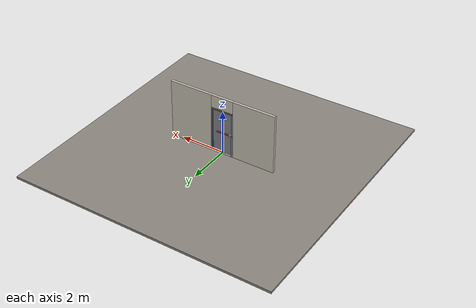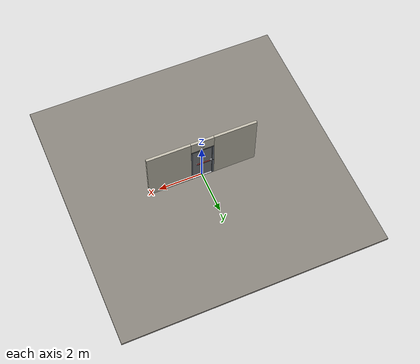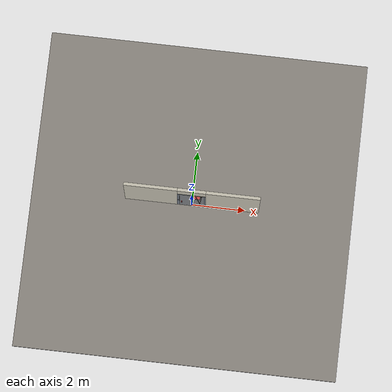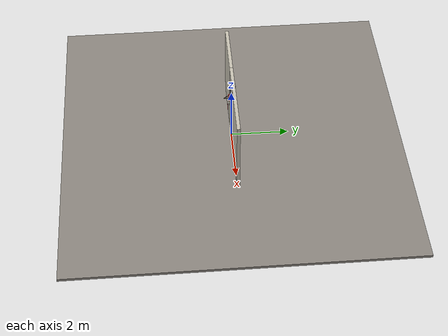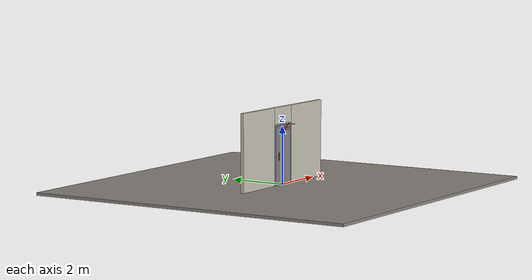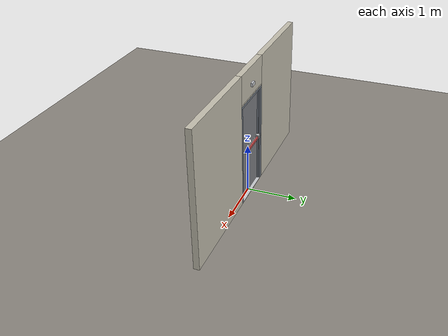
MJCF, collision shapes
<?xml version="1.0" ?>
<mujoco model="db0171_swing_single_full">
  <compiler angle="radian" meshdir="../../hardware" texturedir="../../textures" autolimits="true" inertiafromgeom="false"/>
  <option timestep="0.002" integrator="implicitfast" cone="elliptic" impratio="10" noslip_iterations="3">
    <flag multiccd="enable"/>
  </option>
  <size memory="16M"/>
  <default>
    <geom condim="4" solref="0.005 1" solimp="0.95 0.99 0.001"/>
    <joint solreflimit="0.005 1" solimplimit="0.95 0.99 0.001"/>
    <tendon solreflimit="0.005 1"/>
    <equality solref="0.002 1"/>
  </default>
  <visual>
    <headlight ambient="0.4 0.4 0.4" diffuse="0.7 0.7 0.7" specular="0.2 0.2 0.2"/>
    <quality shadowsize="4096"/>
    <map znear="0.01" zfar="60"/>
  </visual>
  <asset>
    <mesh name="closer_body_fdc4667657" file="closer_body_fdc4667657.obj"/>
    <mesh name="exit_sign_a6449bfa2c" file="exit_sign_a6449bfa2c.obj"/>
    <mesh name="hinge_e22b26c0c1" file="hinge_e22b26c0c1.obj"/>
    <mesh name="hinge_jamb_e1d088f8dc" file="hinge_jamb_e1d088f8dc.obj"/>
    <mesh name="pull_f8d79d6331" file="pull_f8d79d6331.obj"/>
    <mesh name="touchbar_pad_2729a067b4" file="touchbar_pad_2729a067b4.obj"/>
    <material name="mat_floor" rgba="0.55 0.53 0.5 1" specular="0.2" shininess="0.15" reflectance="0"/>
    <material name="mat_wall" rgba="0.78 0.76 0.7 1" specular="0.2" shininess="0.1" reflectance="0"/>
    <material name="mat_leaf" rgba="0.5 0.51 0.53 1" specular="0.2" shininess="0.51" reflectance="0"/>
    <material name="mat_leaf_louver" rgba="0.425 0.433 0.451 1" specular="0.2" shininess="0.4" reflectance="0"/>
    <material name="mat_hinge" rgba="0.65 0.66 0.68 1" specular="0.74" shininess="0.5" reflectance="0.36"/>
    <material name="mat_op_stainless" rgba="0.75 0.76 0.77 1" specular="0.8" shininess="0.65" reflectance="0.4"/>
    <material name="mat_bolt" rgba="0.75 0.76 0.77 1" specular="0.8" shininess="0.65" reflectance="0.4"/>
    <material name="mat_frame" rgba="0.45 0.48 0.52 1" specular="0.32" shininess="0.6" reflectance="0.08"/>
    <material name="mat_threshold" rgba="0.8 0.81 0.83 1" specular="0.8" shininess="0.6" reflectance="0.4"/>
    <material name="mat_closer" rgba="0.22 0.17 0.13 1" specular="0.8" shininess="0.6" reflectance="0.4"/>
    <material name="mat_exit_sign" rgba="0.85 0.1 0.1 1" specular="0.2" shininess="0.6" reflectance="0"/>
    <material name="mat_sign_bracket" rgba="0.8 0.81 0.83 1" specular="0.8" shininess="0.6" reflectance="0.4"/>
    <texture name="skybox" type="skybox" builtin="gradient" rgb1="0.6 0.7 0.85" rgb2="0.9 0.92 0.95" width="256" height="256"/>
  </asset>
  <worldbody>
    <light name="sun" pos="1.5 -2.5 4" dir="-0.3 0.5 -0.8" directional="true" diffuse="0.8 0.8 0.8" specular="0.3 0.3 0.3" castshadow="true"/>
    <light name="fill" pos="-1.5 2.5 3" dir="0.3 -0.5 -0.7" directional="true" diffuse="0.35 0.35 0.4" castshadow="false"/>
    <camera name="robot_view" pos="0 -2.513687 1.734312" xyaxes="1 0 0 0 0.26963 0.962964" fovy="52"/>
    <camera name="far_view" pos="0 2.570688 1.734312" xyaxes="-1 0 0 0 -0.26963 0.962964" fovy="52"/>
    <camera name="iso" pos="-1.932062 -2.106937 2.141063" xyaxes="0.741536 -0.670913 0 0.242917 0.268487 0.932151" fovy="46"/>
    <camera name="detail_handle" pos="-0.1865 -0.897 1.296" xyaxes="0.97561 0.219512 0 -0.070934 0.315262 0.94635" fovy="38"/>
    <geom name="floor" type="box" size="6 6 0.05" pos="0 0 -0.05" material="mat_floor" group="0" contype="1" conaffinity="1" friction="0.8 0.005 0.0001" density="2400"/>
    <geom name="wall_left" type="box" size="0.97975 0.0575 1.35" pos="-1.52025 0.0285 1.35" material="mat_wall" group="0" contype="1" conaffinity="1" friction="0.6 0.005 0.0001" density="800"/>
    <geom name="wall_right" type="box" size="0.99475 0.0575 1.35" pos="1.50525 0.0285 1.35" material="mat_wall" group="0" contype="1" conaffinity="1" friction="0.6 0.005 0.0001" density="800"/>
    <geom name="wall_header" type="box" size="0.5255 0.0575 0.2875" pos="-0.015 0.0285 2.4125" material="mat_wall" group="0" contype="1" conaffinity="1" friction="0.6 0.005 0.0001" density="800"/>
    <geom name="hinge_0_jamb" type="mesh" mesh="hinge_jamb_e1d088f8dc" pos="0.4575 -0.029 0.267" quat="0 0 1 0" material="mat_hinge" group="1" contype="0" conaffinity="0" density="7850"/>
    <geom name="hinge_1_jamb" type="mesh" mesh="hinge_jamb_e1d088f8dc" pos="0.4575 -0.029 1.029" quat="0 0 1 0" material="mat_hinge" group="1" contype="0" conaffinity="0" density="7850"/>
    <geom name="hinge_2_jamb" type="mesh" mesh="hinge_jamb_e1d088f8dc" pos="0.4575 -0.029 1.861" quat="0 0 1 0" material="mat_hinge" group="1" contype="0" conaffinity="0" density="7850"/>
    <geom name="jamb_hinge" type="box" size="0.025 0.0575 1.0225" pos="0.4855 0.0285 1.0225" material="mat_frame" group="0" contype="1" conaffinity="1" friction="0.6 0.005 0.0001" density="300"/>
    <geom name="strike_1016_wall_n" type="box" size="0.04 0.0155 0.02" pos="-0.5005 0.0705 1.016" material="mat_frame" group="0" contype="1" conaffinity="1" friction="0.6 0.005 0.0001" density="300"/>
    <geom name="strike_1016_wall_p" type="box" size="0.04 0.008 0.02" pos="-0.5005 0.025 1.016" material="mat_frame" group="0" contype="1" conaffinity="1" friction="0.6 0.005 0.0001" density="300"/>
    <geom name="strike_1016_ramp" type="box" size="0.04 0.034482 0.02" pos="-0.508781 -0.0044 1.016" quat="0.989198 0 0 -0.146587" material="mat_frame" group="0" contype="1" conaffinity="1" friction="0.12 0.005 0.0001" density="300"/>
    <geom name="strike_1016_back" type="box" size="0.0285 0.011 0.02" pos="-0.512 0.044 1.016" material="mat_frame" group="0" contype="1" conaffinity="1" friction="0.6 0.005 0.0001" density="300"/>
    <geom name="jamb_strike_0" type="box" size="0.04 0.0575 0.498" pos="-0.5005 0.0285 0.498" material="mat_frame" group="0" contype="1" conaffinity="1" friction="0.6 0.005 0.0001" density="300"/>
    <geom name="jamb_strike_1" type="box" size="0.04 0.0575 0.5045" pos="-0.5005 0.0285 1.5405" material="mat_frame" group="0" contype="1" conaffinity="1" friction="0.6 0.005 0.0001" density="300"/>
    <geom name="jamb_head" type="box" size="0.5255 0.0575 0.025" pos="-0.015 0.0285 2.07" material="mat_frame" group="0" contype="1" conaffinity="1" friction="0.6 0.005 0.0001" density="300"/>
    <geom name="head_stud" type="box" size="0.5255 0.0575 0.015" pos="-0.015 0.0285 2.11" material="mat_wall" group="0" contype="1" conaffinity="1" friction="0.6 0.005 0.0001" density="500"/>
    <geom name="stop_hinge" type="box" size="0.0055 0.016 1.0225" pos="0.455 0.0385 1.0225" material="mat_frame" group="0" contype="1" conaffinity="1" friction="0.6 0.005 0.0001" density="300"/>
    <geom name="stop_strike" type="box" size="0.0055 0.016 0.48425" pos="-0.455 0.0385 0.48425" material="mat_frame" group="0" contype="1" conaffinity="1" friction="0.6 0.005 0.0001" density="300"/>
    <geom name="stop_strike_1" type="box" size="0.0055 0.016 0.49075" pos="-0.455 0.0385 1.55425" material="mat_frame" group="0" contype="1" conaffinity="1" friction="0.6 0.005 0.0001" density="300"/>
    <geom name="stop_head" type="box" size="0.4605 0.016 0.0055" pos="0 0.0385 2.0395" material="mat_frame" group="0" contype="1" conaffinity="1" friction="0.6 0.005 0.0001" density="300"/>
    <geom name="threshold" type="box" size="0.5105 0.0575 0.0065" pos="0 0.0285 0.0065" material="mat_threshold" group="0" contype="1" conaffinity="1" friction="0.5 0.005 0.0001" density="2700"/>
    <geom name="closer_bracket" type="box" size="0.03 0.012 0.014" pos="0.3605 -0.041 2.075" material="mat_closer" group="1" contype="0" conaffinity="0" density="2700"/>
    <geom name="exit_sign" type="mesh" mesh="exit_sign_a6449bfa2c" pos="0 0.15 2.345" material="mat_exit_sign" group="2" contype="0" conaffinity="0" density="500"/>
    <geom name="exit_sign_bracket" type="box" size="0.05775 0.02 0.035" pos="0 0.1055 2.345" material="mat_sign_bracket" group="2" contype="0" conaffinity="0" density="7850"/>
    <site name="approach_point" pos="0 -1.5 0" quat="1 0 0 0" size="0.05" rgba="0.2 0.9 0.2 0.5" group="4"/>
    <site name="goal_point" pos="0 1.5 0" quat="1 0 0 0" size="0.05" rgba="0.2 0.9 0.2 0.5" group="4"/>
    <site name="door_plane_center" pos="0 0 1.0225" quat="1 0 0 0" size="0.02" rgba="0.2 0.9 0.2 0.5" group="4"/>
    <body name="leaf" pos="0.4605 0 0">
      <inertial pos="-0.432707 -0.016718 1.240478" mass="49.686444" quat="0.523339 -0.518651 -0.465616 -0.490223" diaginertia="3.128999194 19.707523063 22.727664229"/>
      <joint name="leaf_hinge" type="hinge" axis="0 0 1" pos="-0.003 -0.029 0" limited="true" range="0 1.570796" damping="12.25611" frictionloss="0.300785" stiffness="12.598705" springref="-1.600164" armature="0.02"/>
      <geom name="leaf_slab" type="box" size="0.457 0.022 1.012" pos="-0.46 0 1.029" material="mat_leaf" group="0" contype="1" conaffinity="1" friction="0.4 0.005 0.0001" density="1"/>
      <geom name="leaf_louver_0" type="box" size="0.2285 0.002 0.02625" pos="-0.46 0 0.292" quat="0.953717 0.300706 0 0" material="mat_leaf_louver" group="1" contype="0" conaffinity="0" density="1"/>
      <geom name="leaf_louver_1" type="box" size="0.2285 0.002 0.02625" pos="-0.46 0 0.342" quat="0.953717 0.300706 0 0" material="mat_leaf_louver" group="1" contype="0" conaffinity="0" density="1"/>
      <geom name="leaf_louver_2" type="box" size="0.2285 0.002 0.02625" pos="-0.46 0 0.392" quat="0.953717 0.300706 0 0" material="mat_leaf_louver" group="1" contype="0" conaffinity="0" density="1"/>
      <geom name="leaf_louver_3" type="box" size="0.2285 0.002 0.02625" pos="-0.46 0 0.442" quat="0.953717 0.300706 0 0" material="mat_leaf_louver" group="1" contype="0" conaffinity="0" density="1"/>
      <geom name="leaf_louver_4" type="box" size="0.2285 0.002 0.02625" pos="-0.46 0 0.492" quat="0.953717 0.300706 0 0" material="mat_leaf_louver" group="1" contype="0" conaffinity="0" density="1"/>
      <geom name="leaf_louver_5" type="box" size="0.2285 0.002 0.02625" pos="-0.46 0 0.542" quat="0.953717 0.300706 0 0" material="mat_leaf_louver" group="1" contype="0" conaffinity="0" density="1"/>
      <geom name="leaf_louver_6" type="box" size="0.2285 0.002 0.02625" pos="-0.46 0 0.592" quat="0.953717 0.300706 0 0" material="mat_leaf_louver" group="1" contype="0" conaffinity="0" density="1"/>
      <geom name="leaf_louver_7" type="box" size="0.2285 0.002 0.02625" pos="-0.46 0 0.642" quat="0.953717 0.300706 0 0" material="mat_leaf_louver" group="1" contype="0" conaffinity="0" density="1"/>
      <geom name="leaf_louver_8" type="box" size="0.2285 0.002 0.02625" pos="-0.46 0 0.692" quat="0.953717 0.300706 0 0" material="mat_leaf_louver" group="1" contype="0" conaffinity="0" density="1"/>
      <geom name="hinge_0" type="mesh" mesh="hinge_e22b26c0c1" pos="-0.003 -0.029 0.267" quat="0 0 1 0" material="mat_hinge" group="1" contype="0" conaffinity="0" density="7850"/>
      <geom name="hinge_1" type="mesh" mesh="hinge_e22b26c0c1" pos="-0.003 -0.029 1.029" quat="0 0 1 0" material="mat_hinge" group="1" contype="0" conaffinity="0" density="7850"/>
      <geom name="hinge_2" type="mesh" mesh="hinge_e22b26c0c1" pos="-0.003 -0.029 1.861" quat="0 0 1 0" material="mat_hinge" group="1" contype="0" conaffinity="0" density="7850"/>
      <geom name="leaf_exit_device_rail" type="box" size="0.31705 0.006 0.025" pos="-0.51995 0.028 1.016" material="mat_op_stainless" group="0" contype="1" conaffinity="1" friction="0.6 0.005 0.0001" density="3000"/>
      <geom name="leaf_exit_device_rail_end_n" type="box" size="0.01 0.0325 0.025" pos="-0.827 0.0545 1.016" material="mat_op_stainless" group="0" contype="1" conaffinity="1" friction="0.6 0.005 0.0001" density="3000"/>
      <geom name="leaf_exit_device_rail_end_p" type="box" size="0.01 0.0325 0.025" pos="-0.2129 0.0545 1.016" material="mat_op_stainless" group="0" contype="1" conaffinity="1" friction="0.6 0.005 0.0001" density="3000"/>
      <geom name="leaf_exit_device_case" type="box" size="0.034 0.034125 0.0375" pos="-0.871 0.056125 1.016" material="mat_op_stainless" group="0" contype="1" conaffinity="1" friction="0.6 0.005 0.0001" density="3000"/>
      <geom name="leaf_far_pull_n" type="mesh" mesh="pull_f8d79d6331" pos="-0.827 -0.022 1.016" quat="0 0 -0.707107 0.707107" material="mat_op_stainless" group="1" contype="0" conaffinity="0" density="3000"/>
      <geom name="leaf_far_pull_col_n" type="capsule" size="0.0125 0.13" pos="-0.827 -0.097 1.016" material="mat_op_stainless" group="3" contype="1" conaffinity="1" rgba="0.8 0.3 0.3 0.25" friction="0.7 0.01 0.0001" density="3000"/>
      <geom name="closer_body" type="mesh" mesh="closer_body_fdc4667657" pos="-0.3 -0.022 1.944" quat="0 0 -0.707107 0.707107" material="mat_closer" group="1" contype="0" conaffinity="0" density="2000"/>
      <geom name="closer_body_col" type="box" size="0.145 0.05 0.035" pos="-0.3 -0.072 1.944" material="mat_closer" group="3" contype="1" conaffinity="1" rgba="0.8 0.3 0.3 0.25" friction="0.6 0.005 0.0001" density="2000"/>
      <geom name="closer_pinion_shaft" type="cylinder" size="0.008 0.0655" pos="-0.3 -0.072 2.0095" material="mat_closer" group="1" contype="0" conaffinity="0" density="2700"/>
      <site name="leaf_far_pull_grip_n" pos="-0.827 -0.097 1.016" quat="1 0 0 0" size="0.012" rgba="0.2 0.9 0.2 0.5" group="4"/>
      <site name="leaf_edge_mid" pos="-0.917 0 1.012" quat="1 0 0 0" size="0.02" rgba="0.2 0.9 0.2 0.5" group="4"/>
      <body name="leaf_exit_device" pos="-0.51995 0.022 1.016">
        <inertial pos="0 0.05 0" mass="4.76361" quat="0 0 0.707107 0.707107" diaginertia="0.00116113 0.137653089 0.138099678"/>
        <joint name="leaf_exit_device_slide" type="slide" axis="0 -1 0" limited="true" range="0 0.016" damping="153.575154" frictionloss="0.5" stiffness="1200" springref="-0.015" armature="0.15"/>
        <geom name="leaf_exit_device_pad" type="mesh" mesh="touchbar_pad_2729a067b4" pos="0 0 0" quat="0 0 0.707107 0.707107" material="mat_op_stainless" group="1" contype="0" conaffinity="0" density="3000"/>
        <geom name="leaf_exit_device_pad_col" type="box" size="0.29405 0.015 0.0225" pos="0 0.05 0" material="mat_op_stainless" group="3" contype="1" conaffinity="1" rgba="0.8 0.3 0.3 0.25" friction="0.8 0.01 0.0001" density="3000"/>
        <site name="leaf_exit_device_push" pos="0 0.065 0" quat="1 0 0 0" size="0.015" rgba="0.2 0.9 0.2 0.5" group="4"/>
      </body>
      <body name="leaf_latch_bolt" pos="-0.917 0.044 1.016">
        <inertial pos="0.0055 0 0" mass="0.102826" quat="0.92388 0.382683 0 0" diaginertia="0.000004365 0.000018287 0.000018287"/>
        <joint name="leaf_latch_bolt_slide" type="slide" axis="1 0 0" limited="true" range="0 0.019" damping="2" frictionloss="0.3" stiffness="800" springref="-0.01" armature="0.1"/>
        <geom name="leaf_latch_bolt_capsule" type="capsule" size="0.0095 0.015" pos="0.0055 0 0" quat="0.707107 0 -0.707107 0" material="mat_bolt" group="0" contype="1" conaffinity="1" friction="0.2 0.005 0.0001" density="8500"/>
      </body>
      <body name="closer_arm_main" pos="-0.3 -0.072 2.075" quat="0.890947 0 0 -0.454107">
        <inertial pos="0.14 0 0" mass="0.12096" quat="1 0 0 0" diaginertia="0.000003588 0.00079128 0.000792852"/>
        <joint name="closer_pinion" type="hinge" axis="0 0 1" limited="false" damping="0.01" armature="0.002"/>
        <geom name="closer_arm_main_geom" type="box" size="0.14 0.008 0.005" pos="0.14 0 0" material="mat_closer" group="1" contype="0" conaffinity="0" density="2700"/>
        <body name="closer_arm_fore" pos="0.28 0 0" quat="0.373215 0 0 0.927745">
          <inertial pos="0.128088 0 0" mass="0.076531" quat="1 0 0 0" diaginertia="0.000001771 0.000437665 0.000438201"/>
          <joint name="closer_elbow" type="hinge" axis="0 0 1" limited="false" damping="0.01" armature="0.002"/>
          <geom name="closer_arm_fore_geom" type="box" size="0.1125 0.007 0.004" pos="0.1125 0 0" material="mat_closer" group="1" contype="0" conaffinity="0" density="2700"/>
          <geom name="closer_fore_neck" type="box" size="0.0175 0.003 0.003" pos="0.2425 0 0" material="mat_closer" group="1" contype="0" conaffinity="0" density="2700"/>
          <geom name="closer_fore_pivot" type="cylinder" size="0.005 0.012" pos="0.26 0 0" material="mat_closer" group="1" contype="0" conaffinity="0" density="2700"/>
        </body>
      </body>
    </body>
  </worldbody>
  <tendon>
    <fixed name="leaf_latch_bolt_coupling" limited="true" range="0 10">
      <joint joint="leaf_latch_bolt_slide" coef="1"/>
      <joint joint="leaf_exit_device_slide" coef="-1.357143"/>
    </fixed>
  </tendon>
  <equality>
    <connect name="closer_arm_connect" body1="closer_arm_fore" body2="world" anchor="0.26 0 0" active="true"/>
  </equality>
  <contact>
    <exclude body1="closer_arm_main" body2="leaf"/>
    <exclude body1="closer_arm_fore" body2="leaf"/>
    <exclude body1="closer_arm_main" body2="closer_arm_fore"/>
  </contact>
  <sensor>
    <jointpos name="leaf_hinge_pos" joint="leaf_hinge"/>
    <jointvel name="leaf_hinge_vel" joint="leaf_hinge"/>
    <jointpos name="leaf_exit_device_slide_pos" joint="leaf_exit_device_slide"/>
    <jointvel name="leaf_exit_device_slide_vel" joint="leaf_exit_device_slide"/>
    <jointpos name="leaf_latch_bolt_slide_pos" joint="leaf_latch_bolt_slide"/>
    <jointvel name="leaf_latch_bolt_slide_vel" joint="leaf_latch_bolt_slide"/>
  </sensor>
</mujoco>
